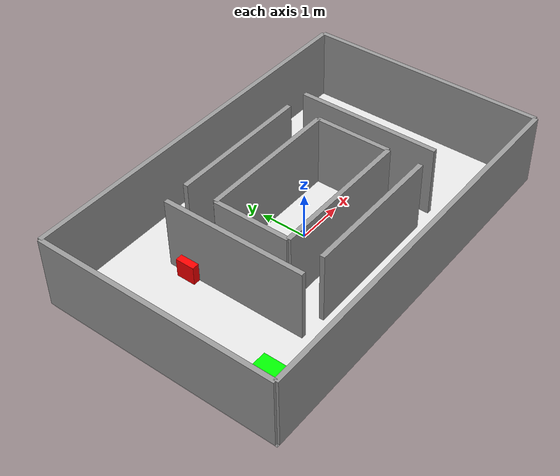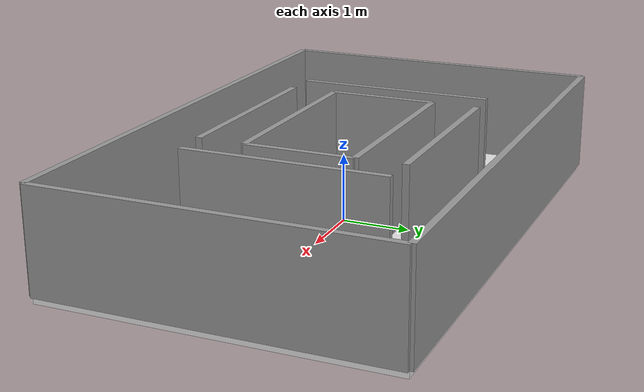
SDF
<sdf version="1.7">
 <world name="mission_maze_world">
  <plugin filename="gz-sim-physics-system" name="gz::sim::systems::Physics"/>
  <plugin filename="gz-sim-user-commands-system" name="gz::sim::systems::UserCommands"/>
  <plugin filename="gz-sim-scene-broadcaster-system" name="gz::sim::systems::SceneBroadcaster"/>
  <plugin filename="gz-sim-sensors-system" name="gz::sim::systems::Sensors">
   <render_engine>ogre2</render_engine>
  </plugin>
  <model name="floor">
   <static>true</static>
   <link name="link">
    <collision name="collision"><geometry><box><size>8 5 0.1</size></box></geometry></collision>
    <visual name="visual">
     <geometry><box><size>8 5 0.1</size></box></geometry>
     <material><ambient>0.9 0.9 0.9 1</ambient><diffuse>0.9 0.9 0.9 1</diffuse></material>
    </visual>
   </link>
   <pose>0 0 -0.05 0 0 0</pose>
  </model>
  <model name="north_wall">
   <static>true</static>
   <link name="link">
    <collision name="collision"><geometry><box><size>8 0.1 1.5</size></box></geometry></collision>
    <visual name="visual">
     <geometry><box><size>8 0.1 1.5</size></box></geometry>
     <material><ambient>0.6 0.6 0.6 1</ambient></material>
    </visual>
   </link>
   <pose>0 2.5 0.75 0 0 0</pose>
  </model>
  <model name="south_wall">
   <static>true</static>
   <link name="link">
    <collision name="collision"><geometry><box><size>8 0.1 1.5</size></box></geometry></collision>
    <visual name="visual">
     <geometry><box><size>8 0.1 1.5</size></box></geometry>
     <material><ambient>0.6 0.6 0.6 1</ambient></material>
    </visual>
   </link>
   <pose>0 -2.5 0.75 0 0 0</pose>
  </model>
  <model name="east_wall">
   <static>true</static>
   <link name="link">
    <collision name="collision"><geometry><box><size>0.1 5 1.5</size></box></geometry></collision>
    <visual name="visual">
     <geometry><box><size>0.1 5 1.5</size></box></geometry>
     <material><ambient>0.6 0.6 0.6 1</ambient></material>
    </visual>
   </link>
   <pose>4 0 0.75 0 0 0</pose>
  </model>
  <model name="west_wall">
   <static>true</static>
   <link name="link">
    <collision name="collision"><geometry><box><size>0.1 5 1.5</size></box></geometry></collision>
    <visual name="visual">
     <geometry><box><size>0.1 5 1.5</size></box></geometry>
     <material><ambient>0.6 0.6 0.6 1</ambient></material>
    </visual>
   </link>
   <pose>-4 0 0.75 0 0 0</pose>
  </model>
  <model name="unknown_top">
   <static>true</static>
   <link name="link">
    <collision name="collision"><geometry><box><size>3 0.1 1.5</size></box></geometry></collision>
    <visual name="visual">
     <geometry><box><size>3 0.1 1.5</size></box></geometry>
     <material><ambient>0.6 0.6 0.6 1</ambient></material>
    </visual>
   </link>
   <pose>0 0.8 0.75 0 0 0</pose>
  </model>
  <model name="unknown_bottom">
   <static>true</static>
   <link name="link">
    <collision name="collision"><geometry><box><size>3 0.1 1.5</size></box></geometry></collision>
    <visual name="visual">
     <geometry><box><size>3 0.1 1.5</size></box></geometry>
     <material><ambient>0.6 0.6 0.6 1</ambient></material>
    </visual>
   </link>
   <pose>0 -0.8 0.75 0 0 0</pose>
  </model>
  <model name="unknown_left">
   <static>true</static>
   <link name="link">
    <collision name="collision"><geometry><box><size>0.1 1.6 1.5</size></box></geometry></collision>
    <visual name="visual">
     <geometry><box><size>0.1 1.6 1.5</size></box></geometry>
     <material><ambient>0.6 0.6 0.6 1</ambient></material>
    </visual>
   </link>
   <pose>-1.5 0 0.75 0 0 0</pose>
  </model>
  <model name="unknown_right">
   <static>true</static>
   <link name="link">
    <collision name="collision"><geometry><box><size>0.1 1.6 1.5</size></box></geometry></collision>
    <visual name="visual">
     <geometry><box><size>0.1 1.6 1.5</size></box></geometry>
     <material><ambient>0.6 0.6 0.6 1</ambient></material>
    </visual>
   </link>
   <pose>1.5 0 0.75 0 0 0</pose>
  </model>
  <model name="corridor_1">
   <static>true</static>
   <link name="link">
    <collision name="collision"><geometry><box><size>0.1 3 1.5</size></box></geometry></collision>
    <visual name="visual">
     <geometry><box><size>0.1 3 1.5</size></box></geometry>
     <material><ambient>0.6 0.6 0.6 1</ambient></material>
    </visual>
   </link>
   <pose>-2 0 0.75 0 0 0</pose>
  </model>
  <model name="corridor_2">
   <static>true</static>
   <link name="link">
    <collision name="collision"><geometry><box><size>0.1 3 1.5</size></box></geometry></collision>
    <visual name="visual">
     <geometry><box><size>0.1 3 1.5</size></box></geometry>
     <material><ambient>0.6 0.6 0.6 1</ambient></material>
    </visual>
   </link>
   <pose>2 0 0.75 0 0 0</pose>
  </model>
  <model name="corridor_3">
   <static>true</static>
   <link name="link">
    <collision name="collision"><geometry><box><size>3 0.1 1.5</size></box></geometry></collision>
    <visual name="visual">
     <geometry><box><size>3 0.1 1.5</size></box></geometry>
     <material><ambient>0.6 0.6 0.6 1</ambient></material>
    </visual>
   </link>
   <pose>0 1.5 0.75 0 0 0</pose>
  </model>
  <model name="corridor_4">
   <static>true</static>
   <link name="link">
    <collision name="collision"><geometry><box><size>3 0.1 1.5</size></box></geometry></collision>
    <visual name="visual">
     <geometry><box><size>3 0.1 1.5</size></box></geometry>
     <material><ambient>0.6 0.6 0.6 1</ambient></material>
    </visual>
   </link>
   <pose>0 -1.5 0.75 0 0 0</pose>
  </model>
  <model name="start_zone">
   <static>true</static>
   <link name="link">
    <visual name="visual">
     <geometry><box><size>0.6 0.6 0.02</size></box></geometry>
     <material><ambient>0 1 0 1</ambient></material>
    </visual>
   </link>
   <pose>-3 -1.5 0.01 0 0 0</pose>
  </model>
  <model name="end_zone">
   <static>true</static>
   <link name="link">
    <visual name="visual">
     <geometry><box><size>0.6 0.6 0.02</size></box></geometry>
     <material><ambient>0 0 1 1</ambient></material>
    </visual>
   </link>
   <pose>3 1.5 0.01 0 0 0</pose>
  </model>
  <model name="station_A">
   <static>true</static>
   <link name="link">
    <visual name="visual">
     <geometry><box><size>0.4 0.4 0.4</size></box></geometry>
     <material><ambient>1 0 0 1</ambient></material>
    </visual>
   </link>
   <pose>-2 1 0.2 0 0 0</pose>
  </model>
  <model name="station_B">
   <static>true</static>
   <link name="link">
    <visual name="visual">
     <geometry><box><size>0.4 0.4 0.4</size></box></geometry>
     <material><ambient>0 1 1 1</ambient></material>
    </visual>
   </link>
   <pose>2 -1 0.2 0 0 0</pose>
  </model>
  <model name="station_C">
   <static>true</static>
   <link name="link">
    <visual name="visual">
     <geometry><box><size>0.4 0.4 0.4</size></box></geometry>
     <material><ambient>1 0 1 1</ambient></material>
    </visual>
   </link>
   <pose>3 0 0.2 0 0 0</pose>
  </model>
  <include><uri>model://aruco_marker_0</uri><pose>-0.75 1.35 0.6 0 0 -1.5708</pose></include>
  <include><uri>model://aruco_marker_1</uri><pose>1.25 -1.35 0.6 0 0 1.5708</pose></include>
  <light name="sun" type="directional">
   <pose>0 0 10 0 0 0</pose>
   <diffuse>0.8 0.8 0.8 1</diffuse>
   <direction>-0.5 0.1 -0.9</direction>
  </light>
 </world>
</sdf>

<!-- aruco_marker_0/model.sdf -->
<sdf version="1.7">
  <model name="aruco_marker_0">
    <static>true</static>
    <link name="link">
      <collision name="collision">
        <geometry>
          <box>
            <size>0.26 0.26 0.01</size>
          </box>
        </geometry>
      </collision>
      <visual name="visual">
        <geometry>
          <box>
            <size>0.26 0.26 0.01</size>
          </box>
        </geometry>
        <material>
          <script>
            <uri>file://media/materials/scripts/gazebo.material</uri>
            <name>Gazebo/White</name>
          </script>
          <pbr>
            <metal>
              <albedo_map>materials/textures/marker_0.png</albedo_map>
            </metal>
          </pbr>
          <ambient>1 1 1 1</ambient>
          <diffuse>1 1 1 1</diffuse>
          <specular>0.1 0.1 0.1 1</specular>
          <emissive>0 0 0 1</emissive>
        </material>
        <cast_shadows>false</cast_shadows>
      </visual>
    </link>
  </model>
</sdf>

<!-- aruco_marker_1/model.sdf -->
<sdf version="1.7">
  <model name="aruco_marker_1">
    <static>true</static>
    <link name="link">
      <collision name="collision">
        <geometry>
          <box>
            <size>0.26 0.26 0.01</size>
          </box>
        </geometry>
      </collision>
      <visual name="visual">
        <geometry>
          <box>
            <size>0.26 0.26 0.01</size>
          </box>
        </geometry>
        <material>
          <script>
            <uri>file://media/materials/scripts/gazebo.material</uri>
            <name>Gazebo/White</name>
          </script>
          <pbr>
            <metal>
              <albedo_map>materials/textures/marker_1.png</albedo_map>
            </metal>
          </pbr>
          <ambient>1 1 1 1</ambient>
          <diffuse>1 1 1 1</diffuse>
          <specular>0.1 0.1 0.1 1</specular>
          <emissive>0 0 0 1</emissive>
        </material>
        <cast_shadows>false</cast_shadows>
      </visual>
    </link>
  </model>
</sdf>
